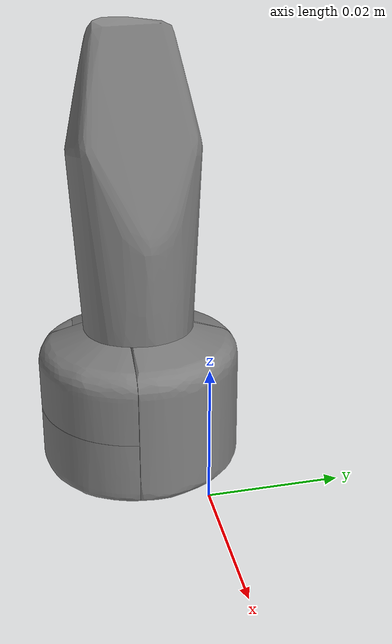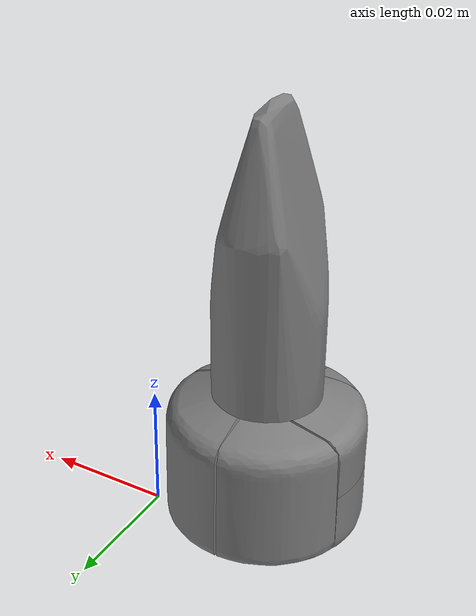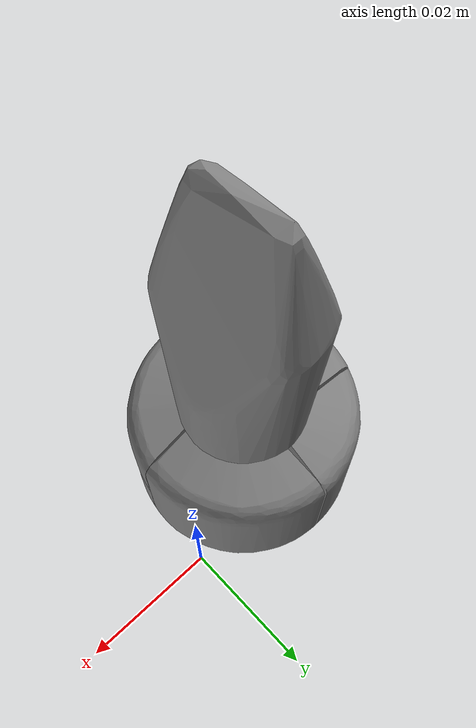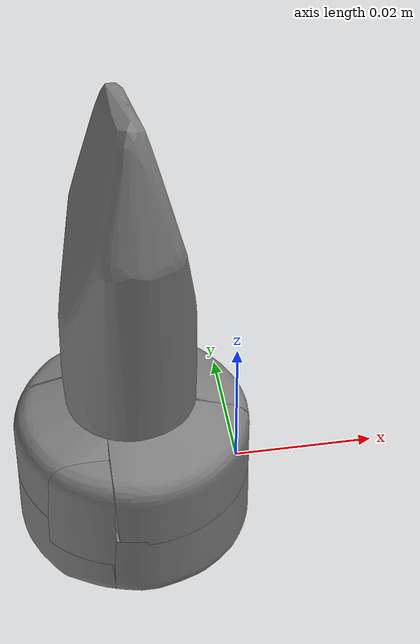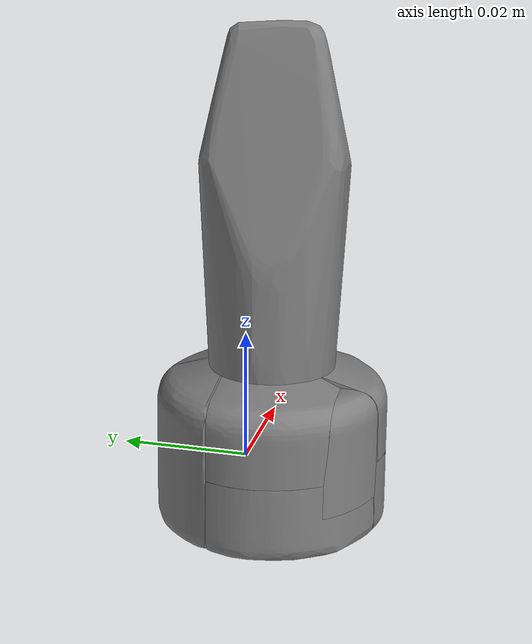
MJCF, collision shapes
<mujoco model="ycb_072-e_toy_airplane">
  <compiler meshdir="meshes" texturedir="meshes" angle="radian"/>
  <default>
    <default class="visual"><geom contype="0" conaffinity="0" group="2" density="0"/></default>
    <default class="collision"><geom group="3"/></default>
  </default>
  <asset>
    <texture name="ycb_072-e_toy_airplane_tex" type="2d" file="ycb_072-e_toy_airplane_texture.png"/>
    <material name="ycb_072-e_toy_airplane_mat" texture="ycb_072-e_toy_airplane_tex" specular="0.2" shininess="0.3"/>
    <mesh name="ycb_072-e_toy_airplane_visual" file="ycb_072-e_toy_airplane_visual.obj"/>
    <mesh name="ycb_072-e_toy_airplane_hull0" file="ycb_072-e_toy_airplane_hull0.obj"/>
    <mesh name="ycb_072-e_toy_airplane_hull1" file="ycb_072-e_toy_airplane_hull1.obj"/>
    <mesh name="ycb_072-e_toy_airplane_hull2" file="ycb_072-e_toy_airplane_hull2.obj"/>
    <mesh name="ycb_072-e_toy_airplane_hull3" file="ycb_072-e_toy_airplane_hull3.obj"/>
    <mesh name="ycb_072-e_toy_airplane_hull4" file="ycb_072-e_toy_airplane_hull4.obj"/>
    <mesh name="ycb_072-e_toy_airplane_hull5" file="ycb_072-e_toy_airplane_hull5.obj"/>
    <mesh name="ycb_072-e_toy_airplane_hull6" file="ycb_072-e_toy_airplane_hull6.obj"/>
    <mesh name="ycb_072-e_toy_airplane_hull7" file="ycb_072-e_toy_airplane_hull7.obj"/>
  </asset>
  <worldbody>
    <body name="object" pos="0 0 0">
      <freejoint name="object_free"/>
      <geom type="mesh" mesh="ycb_072-e_toy_airplane_visual" material="ycb_072-e_toy_airplane_mat" class="visual"/>
      <geom type="mesh" mesh="ycb_072-e_toy_airplane_hull0" class="collision"/>
      <geom type="mesh" mesh="ycb_072-e_toy_airplane_hull1" class="collision"/>
      <geom type="mesh" mesh="ycb_072-e_toy_airplane_hull2" class="collision"/>
      <geom type="mesh" mesh="ycb_072-e_toy_airplane_hull3" class="collision"/>
      <geom type="mesh" mesh="ycb_072-e_toy_airplane_hull4" class="collision"/>
      <geom type="mesh" mesh="ycb_072-e_toy_airplane_hull5" class="collision"/>
      <geom type="mesh" mesh="ycb_072-e_toy_airplane_hull6" class="collision"/>
      <geom type="mesh" mesh="ycb_072-e_toy_airplane_hull7" class="collision"/>
    </body>
  </worldbody>
</mujoco>
